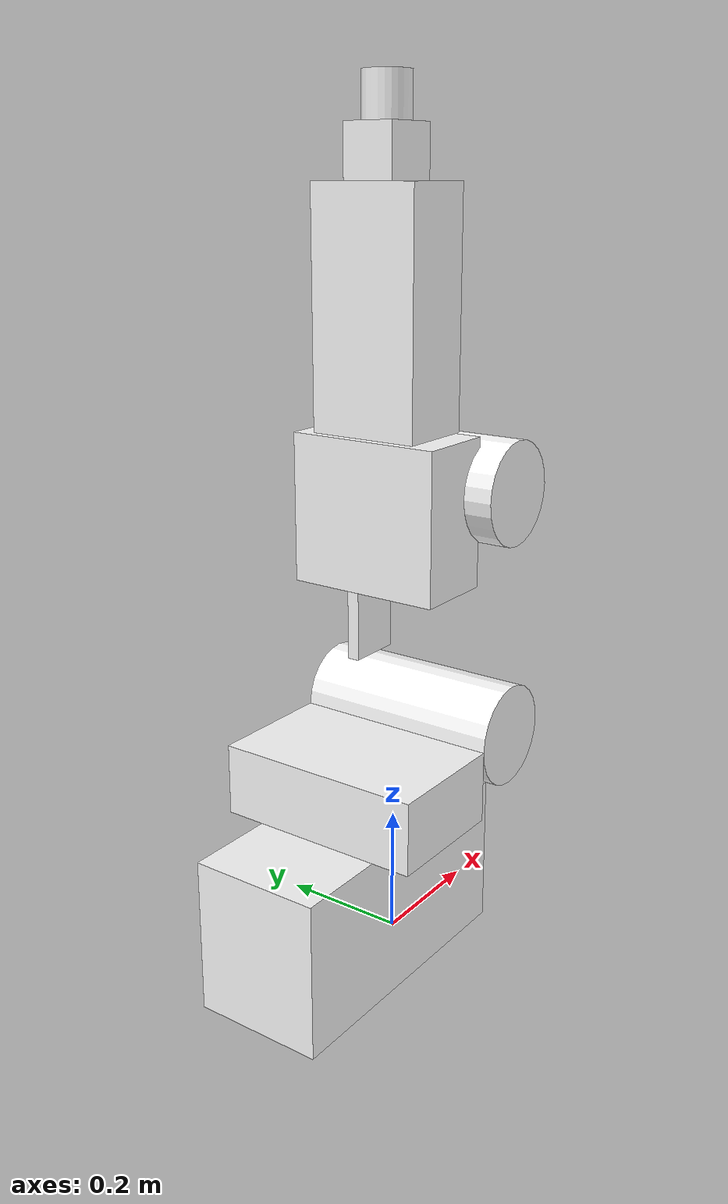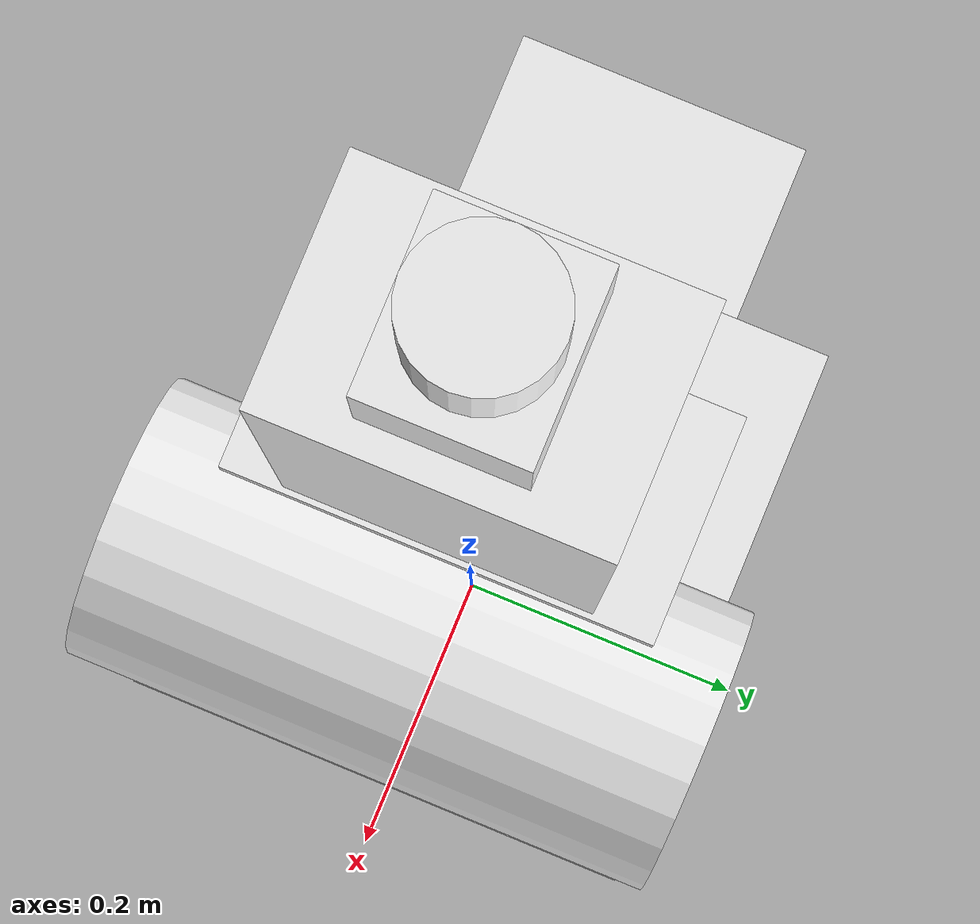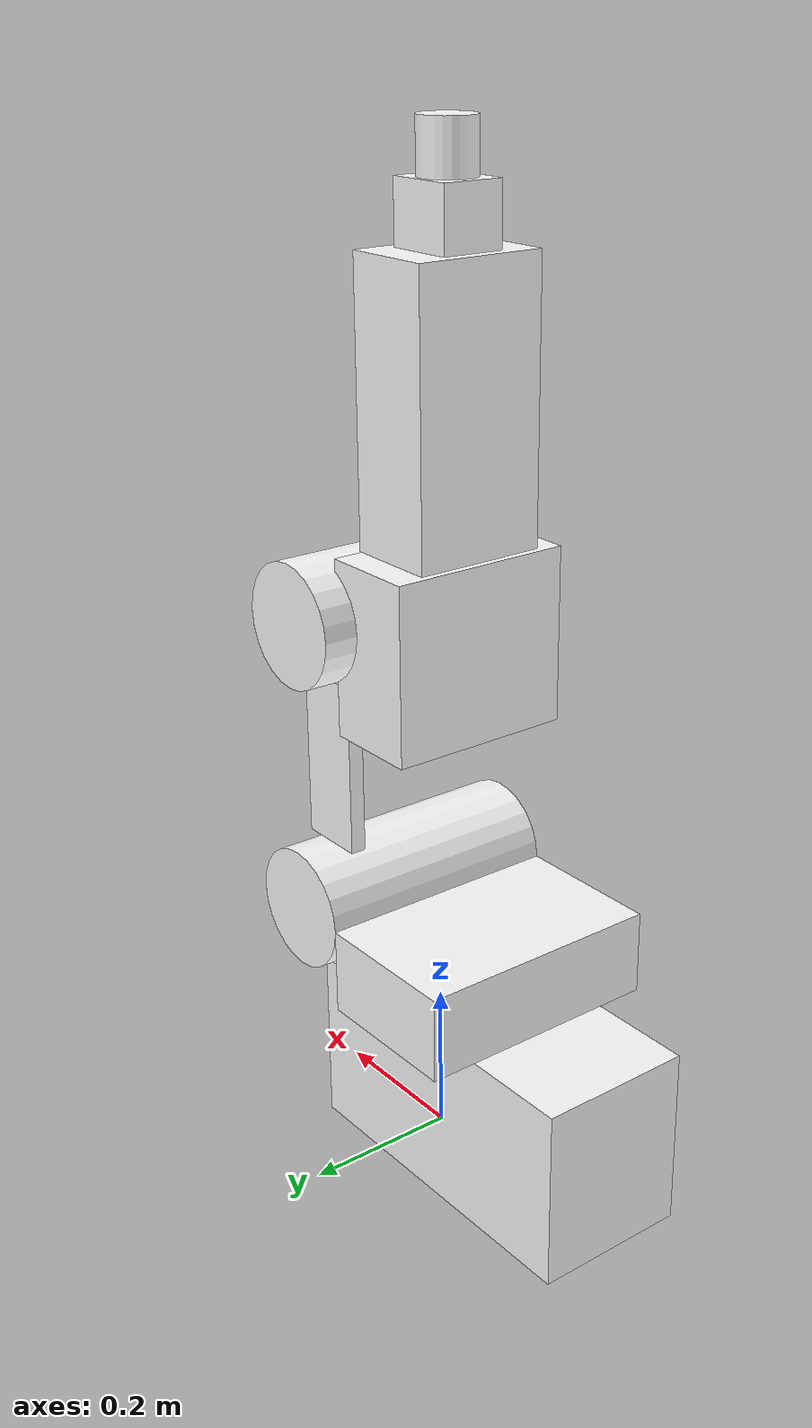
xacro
<?xml version="1.0"?>
<robot xmlns:xacro="http://www.ros.org/wiki/xacro">
  <property name="PI" value="3.1415926535897931" />
  <property name="offset_from_limit" value="5.0" />
  <link name="base_link" >
    <visual>
      <geometry>
	<box size="0.455 .204 .239"/>
      </geometry>
      <origin xyz="-0.1125 0 .1185"/>
      <material name="white">
        <color rgba="1 1 1 1"/>
      </material>
    </visual>
    <collision>
      <geometry>
	<box size="0.455 .204 .239"/>
      </geometry>
      <origin xyz="-0.1125 0 .1185"/>
    </collision>
  </link>

  <joint name="j1" type="revolute">
    <axis xyz="0 0 1"/>
    <limit effort="1000.0" lower="${(-170+offset_from_limit)*PI/180}" upper="${(170-offset_from_limit)*PI/180}" velocity="0.05"/>
    <parent link="base_link"/>
    <child link="shoulder_block"/>
    <origin xyz="0 0 0.239"/>
  </joint>

  <link name="shoulder_block">
    <visual>
      <geometry>
	<box size="0.200 .327 .111"/>
      </geometry>
      <origin xyz="-.100 0 0.0555"/>
      <material name="white">
        <color rgba="1 1 1 1"/>
      </material>
    </visual>
    <collision>
      <geometry>
	<box size="0.200 .327 .111"/>
      </geometry>
      <origin xyz="-.100 0 0.0555"/>
    </collision>
  </link>

  <joint name="j2" type="revolute">
    <axis xyz="0 0 1"/>
    <limit effort="1000.0" lower="${-92*PI/180}" upper="${(135-offset_from_limit)*PI/180}" velocity="0.05"/>
    <parent link="shoulder_block"/>
    <child link="shoulder"/>
    <origin xyz="0.079 0 0.111" rpy="1.57079632679 0 3.14159265359"/>
  </joint>

  <link name="shoulder">
    <visual>
      <geometry>
	<cylinder length="0.327" radius="0.079"/>
      </geometry>
      <origin xyz="0 0 0"/>
      <material name="white">
        <color rgba="1 1 1 1"/>
      </material>
    </visual>
    <collision>
      <geometry>
        <cylinder length="0.327" radius="0.079"/>
      </geometry>
      <origin xyz="0 0 0"/>
    </collision>
  </link>

  <joint name="fixed_joint_1" type="fixed">
    <axis xyz="0 0 1"/>
    <parent link="shoulder"/>
    <child link="upper_arm"/>
    <origin xyz="0 0.079 0"/>
  </joint>

  <link name="upper_arm">
    <visual>
      <geometry>
	<box size="0.090 0.222 0.02"/>
      </geometry>
      <origin xyz="0 0.111 0.102"/>
      <material name="white">
        <color rgba="1 1 1 1"/>
      </material>
    </visual>
    <collision>
      <geometry>
	<box size="0.090 0.222 0.02"/>
      </geometry>
      <origin xyz="0 0.111 0.102"/>
    </collision>
  </link>

  <joint name="j3" type="revolute">
    <axis xyz="0 0 1"/>
    <limit effort="1000.0" lower="${(-129+offset_from_limit)*PI/180}" upper="${(166-offset_from_limit)*PI/180}" velocity="0.05"/>
    <parent link="upper_arm"/>
    <child link="elbow"/>
    <origin xyz="0 0.301 0" rpy="0 0 1.57"/>
  </joint>

  <link name="elbow">
    <visual>
      <geometry>
	<cylinder length="0.327" radius="0.079"/>
      </geometry>
      <origin xyz="0 0 0"/>
      <material name="white">
        <color rgba="1 1 1 1"/>
      </material>
    </visual>
    <collision>
      <geometry>
        <cylinder length="0.327" radius="0.079"/>
      </geometry>
      <origin xyz="0 0 0"/>
    </collision>
  </link>

  <joint name="fixed_joint_2" type="fixed">
    <parent link="elbow"/>
    <child link="elbow_block"/>
    <origin xyz="0 -0.100 0"/>
  </joint>

  <link name="elbow_block">
    <visual>
      <geometry>
	<box size="0.225 .126 .239"/>
      </geometry>
      <origin xyz="-0.0275 0 0"/>
      <material name="white">
        <color rgba="1 1 1 1"/>
      </material>
    </visual>
    <collision>
      <geometry>
	<box size="0.225 .126 .239"/>
      </geometry>
      <origin xyz="-0.0275 0 0"/>
    </collision>
  </link>

  <joint name="j4" type="revolute">
    <axis xyz="0 0 1"/>
    <limit effort="1000.0" lower="${(-160+offset_from_limit)*PI/180}" upper="${(160-offset_from_limit)*PI/180}" velocity="0.05"/>
    <parent link="elbow_block"/>
    <child link="fore_arm"/>
    <origin xyz="0.079 0 0"  rpy="0 1.5707963267 0"/>
  </joint>

  <link name="fore_arm">
    <visual>
      <geometry>
	<box size="0.170 .120 .346"/>
      </geometry>
      <origin xyz="0 0 0.1815"/>
      <material name="white">
        <color rgba="1 1 1 1"/>
      </material>
    </visual>
    <collision>
      <geometry>
	<box size="0.170 .120 .346"/>
      </geometry>
      <origin xyz="0 0 0.1815"/>
    </collision>
  </link>

  <joint name="j5" type="revolute">
    <axis xyz="0 0 1"/>
    <limit effort="1000.0" lower="${(-110+offset_from_limit)*PI/180}" upper="${(110-offset_from_limit)*PI/180}" velocity="0.05"/>
    <parent link="fore_arm"/>
    <child link="wrist"/>
    <origin xyz="0 0 0.346"  rpy="0.0 -1.5707963267 0"/>
  </joint>

  <link name="wrist">
    <visual>
     <geometry>
	<box size="0.170 .09 .080"/>
      </geometry>
      <origin xyz="0 0 0"/>
      <material name="white">
        <color rgba="1 1 1 1"/>
      </material>
    </visual>
    <collision>
     <geometry>
	<box size="0.170 .09 .080"/>
      </geometry>
      <origin xyz="0 0 0"/>
    </collision>
  </link>

  <joint name="j6" type="revolute">
    <axis xyz="0 0 1"/>
    <limit effort="1000.0" lower="${(-360+offset_from_limit)*PI/180}" upper="${(360-offset_from_limit)*PI/180}" velocity="0.05"/>
    <parent link="wrist"/>
    <child link="torque_sensor"/>
    <origin xyz="0.085 0 0"  rpy="0 1.5707963267 0"/>
  </joint>

  <link name="torque_sensor">
    <visual>
     <geometry>
	<cylinder  length="0.065" radius="0.035"/>
      </geometry>
      <origin xyz="0 0 0.0325"/>
      <material name="white">
        <color rgba="1 1 1 1"/>
      </material>
    </visual>
    <collision>
     <geometry>
	<box size="0.02 .02 0.065"/>
      </geometry>
      <origin xyz="0 0 0.065"/>
    </collision>
  </link>

  <joint name="torque_sensor_joint" type="fixed">
    <axis xyz="0 0 1"/>
    <limit effort="1000.0" lower="${(-360+offset_from_limit)*PI/180}" upper="${(360-offset_from_limit)*PI/180}" velocity="0.05"/>
    <parent link="torque_sensor"/>
    <child link="end_effector"/>
    <origin xyz="0 0 0.065"  rpy="0 0 0"/> <!-- original is 0.085 but we have the torque sensor...-->
  </joint>

  <link name="end_effector">
  </link>

</robot>
